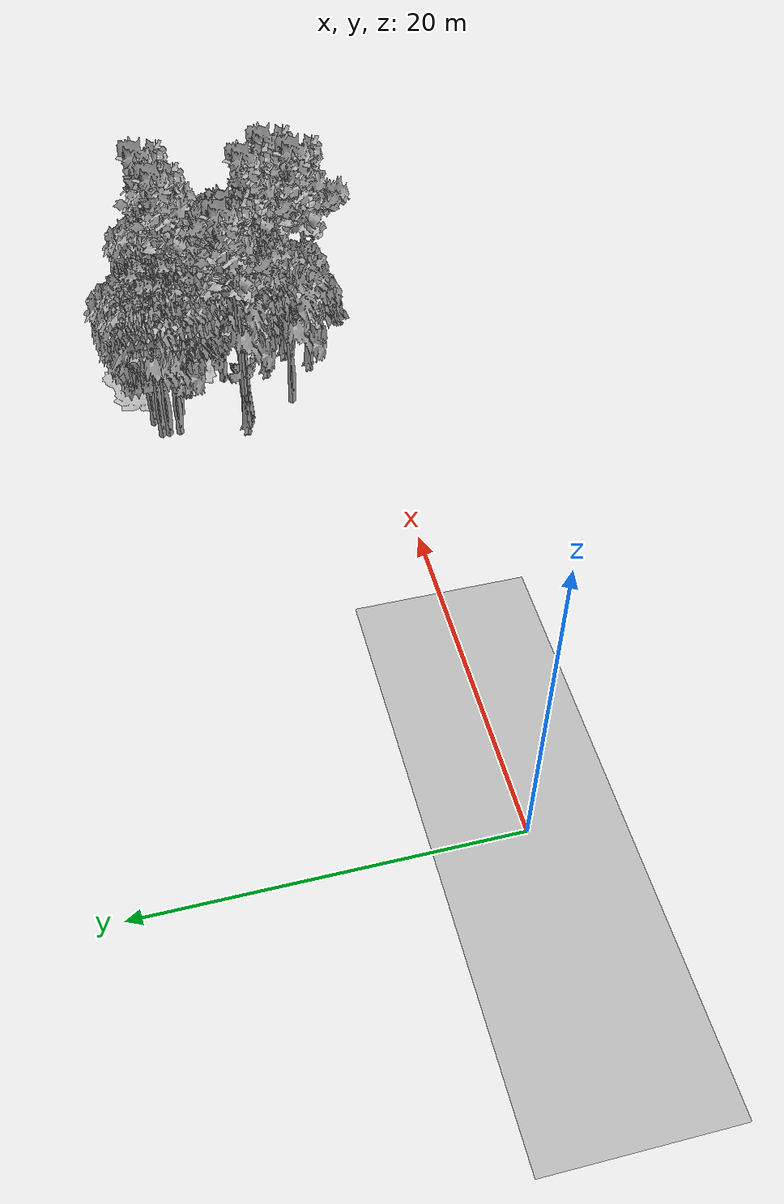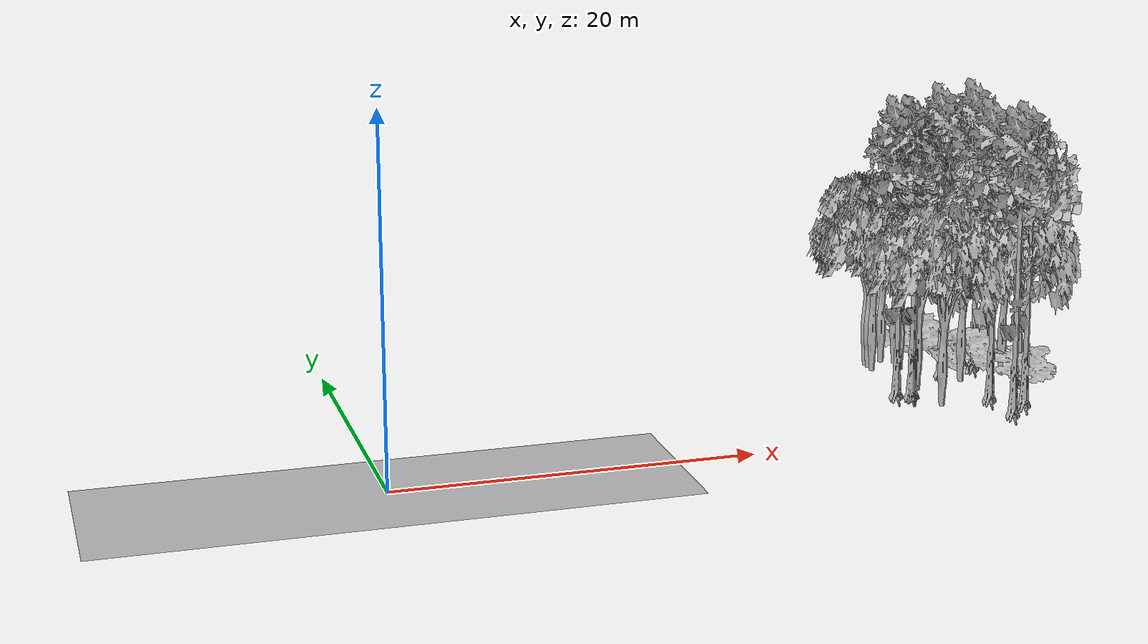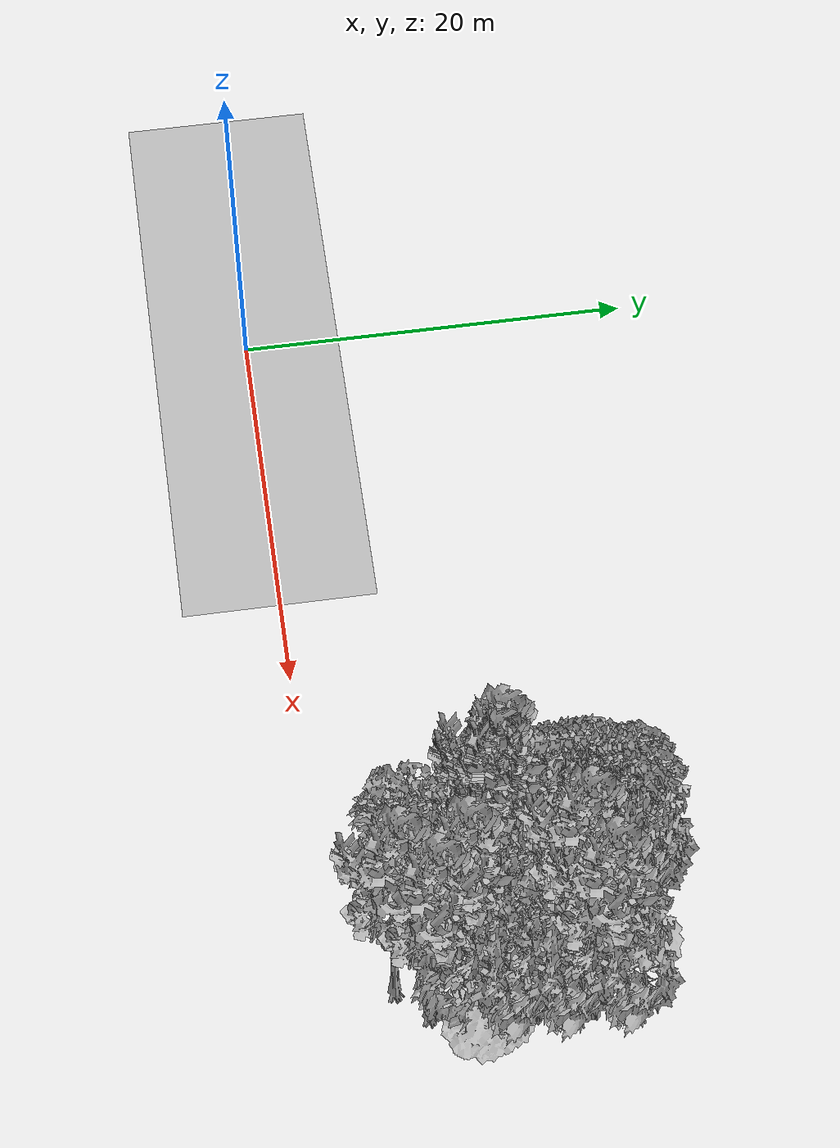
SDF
<sdf version="1.7">
 <world name="default">
  <model name="ground_plane">
   <static>1</static>
   <link name="link">
    <collision name="collision">
     <pose>-50 0 0 0 -0 0</pose>
     <geometry><plane><normal>0 0 1</normal><size>100 100</size></plane></geometry>
     <surface><contact><ode><min_depth>0.01</min_depth><max_vel>0</max_vel></ode></contact></surface>
    </collision>
    <visual name="grass">
     <cast_shadows>0</cast_shadows>
     <geometry>
      <mesh>
       <scale>0.5814285714285714 0.18142857142857144 0.1</scale>
       <uri>file://grass_plane/meshes/grass_plane.dae</uri>
      </mesh>
     </geometry>
    </visual>
   </link>
  </model>
  <model name="Tree 17">
   <static>1</static>
   <pose>38.18825486041709 4.283640740840816 0 1.57079 -0 0</pose>
   <link name="link">
    <collision name="collision">
     <geometry><mesh><scale>3.5 5 3.5</scale><uri>model://tree_9/meshes/tree_9.obj</uri></mesh></geometry>
    </collision>
    <visual name="visual">
     <geometry><mesh><scale>3.5 5 3.5</scale><uri>model://tree_9/meshes/tree_9.obj</uri></mesh></geometry>
    </visual>
   </link>
  </model>
  <model name="Tree 60">
   <static>1</static>
   <pose>31.801380856574454 7.959255208684155 0 1.57079 -0 0</pose>
   <link name="link">
    <collision name="collision">
     <geometry><mesh><scale>3.5 5 3.5</scale><uri>model://tree_9/meshes/tree_9.obj</uri></mesh></geometry>
    </collision>
    <visual name="visual">
     <geometry><mesh><scale>3.5 5 3.5</scale><uri>model://tree_9/meshes/tree_9.obj</uri></mesh></geometry>
    </visual>
   </link>
  </model>
  <model name="Tree 73">
   <static>1</static>
   <pose>33.119487264866464 4.724670429055713 0 1.57079 -0 0</pose>
   <link name="link">
    <collision name="collision">
     <geometry><mesh><scale>3.5 5 3.5</scale><uri>model://tree_2/meshes/tree_2.obj</uri></mesh></geometry>
    </collision>
    <visual name="visual">
     <geometry><mesh><scale>3.5 5 3.5</scale><uri>model://tree_2/meshes/tree_2.obj</uri></mesh></geometry>
    </visual>
   </link>
  </model>
  <model name="Tree 171">
   <static>1</static>
   <pose>36.06194600849989 11.033371287262558 0 1.57079 -0 0</pose>
   <link name="link">
    <collision name="collision">
     <geometry><mesh><scale>3.5 5 3.5</scale><uri>model://tree_9/meshes/tree_9.obj</uri></mesh></geometry>
    </collision>
    <visual name="visual">
     <geometry><mesh><scale>3.5 5 3.5</scale><uri>model://tree_9/meshes/tree_9.obj</uri></mesh></geometry>
    </visual>
   </link>
  </model>
  <model name="Tree 175">
   <static>1</static>
   <pose>36.12898912715005 8.623634537106998 0 1.57079 -0 0</pose>
   <link name="link">
    <collision name="collision">
     <geometry><mesh><scale>3.5 5 3.5</scale><uri>model://tree_2/meshes/tree_2.obj</uri></mesh></geometry>
    </collision>
    <visual name="visual">
     <geometry><mesh><scale>3.5 5 3.5</scale><uri>model://tree_2/meshes/tree_2.obj</uri></mesh></geometry>
    </visual>
   </link>
  </model>
  <model name="Tree 208">
   <static>1</static>
   <pose>39.18103492123957 11.766373894876168 0 1.57079 -0 0</pose>
   <link name="link">
    <collision name="collision">
     <geometry><mesh><scale>3.5 5 3.5</scale><uri>model://tree_2/meshes/tree_2.obj</uri></mesh></geometry>
    </collision>
    <visual name="visual">
     <geometry><mesh><scale>3.5 5 3.5</scale><uri>model://tree_2/meshes/tree_2.obj</uri></mesh></geometry>
    </visual>
   </link>
  </model>
  <model name="Tree 211">
   <static>1</static>
   <pose>33.154415729462315 13.592963001339449 0 1.57079 -0 0</pose>
   <link name="link">
    <collision name="collision">
     <geometry><mesh><scale>3.5 5 3.5</scale><uri>model://tree_2/meshes/tree_2.obj</uri></mesh></geometry>
    </collision>
    <visual name="visual">
     <geometry><mesh><scale>3.5 5 3.5</scale><uri>model://tree_2/meshes/tree_2.obj</uri></mesh></geometry>
    </visual>
   </link>
  </model>
  <model name="Tree 218">
   <static>1</static>
   <pose>31.945807362627818 12.138485751741804 0 1.57079 -0 0</pose>
   <link name="link">
    <collision name="collision">
     <geometry><mesh><scale>3.5 5 3.5</scale><uri>model://tree_2/meshes/tree_2.obj</uri></mesh></geometry>
    </collision>
    <visual name="visual">
     <geometry><mesh><scale>3.5 5 3.5</scale><uri>model://tree_2/meshes/tree_2.obj</uri></mesh></geometry>
    </visual>
   </link>
  </model>
  <model name="Tree 229">
   <static>1</static>
   <pose>36.785758492072816 2.8733846141148014 0 1.57079 -0 0</pose>
   <link name="link">
    <collision name="collision">
     <geometry><mesh><scale>3.5 5 3.5</scale><uri>model://tree_9/meshes/tree_9.obj</uri></mesh></geometry>
    </collision>
    <visual name="visual">
     <geometry><mesh><scale>3.5 5 3.5</scale><uri>model://tree_9/meshes/tree_9.obj</uri></mesh></geometry>
    </visual>
   </link>
  </model>
  <model name="Tree 237">
   <static>1</static>
   <pose>38.46949249728837 11.644810871078455 0 1.57079 -0 0</pose>
   <link name="link">
    <collision name="collision">
     <geometry><mesh><scale>3.5 5 3.5</scale><uri>model://tree_9/meshes/tree_9.obj</uri></mesh></geometry>
    </collision>
    <visual name="visual">
     <geometry><mesh><scale>3.5 5 3.5</scale><uri>model://tree_9/meshes/tree_9.obj</uri></mesh></geometry>
    </visual>
   </link>
  </model>
  <model name="Tree 256">
   <static>1</static>
   <pose>39.19507803085271 6.805998237609828 0 1.57079 -0 0</pose>
   <link name="link">
    <collision name="collision">
     <geometry><mesh><scale>4 2.5 4</scale><uri>model://tree_1/meshes/tree_1.obj</uri></mesh></geometry>
    </collision>
    <visual name="visual">
     <geometry><mesh><scale>4 2.5 4</scale><uri>model://tree_1/meshes/tree_1.obj</uri></mesh></geometry>
    </visual>
   </link>
  </model>
  <model name="Tree 273">
   <static>1</static>
   <pose>31.97731857496109 13.246133905083632 0 1.57079 -0 0</pose>
   <link name="link">
    <collision name="collision">
     <geometry><mesh><scale>3.5 5 3.5</scale><uri>model://tree_2/meshes/tree_2.obj</uri></mesh></geometry>
    </collision>
    <visual name="visual">
     <geometry><mesh><scale>3.5 5 3.5</scale><uri>model://tree_2/meshes/tree_2.obj</uri></mesh></geometry>
    </visual>
   </link>
  </model>
  <model name="Tree 314">
   <static>1</static>
   <pose>33.835152556276796 13.15519883858246 0 1.57079 -0 0</pose>
   <link name="link">
    <collision name="collision">
     <geometry><mesh><scale>3.5 5 3.5</scale><uri>model://tree_2/meshes/tree_2.obj</uri></mesh></geometry>
    </collision>
    <visual name="visual">
     <geometry><mesh><scale>3.5 5 3.5</scale><uri>model://tree_2/meshes/tree_2.obj</uri></mesh></geometry>
    </visual>
   </link>
  </model>
  <model name="Tree 370">
   <static>1</static>
   <pose>39.030614843236805 9.095409324979432 0 1.57079 -0 0</pose>
   <link name="link">
    <collision name="collision">
     <geometry><mesh><scale>3.5 5 3.5</scale><uri>model://tree_2/meshes/tree_2.obj</uri></mesh></geometry>
    </collision>
    <visual name="visual">
     <geometry><mesh><scale>3.5 5 3.5</scale><uri>model://tree_2/meshes/tree_2.obj</uri></mesh></geometry>
    </visual>
   </link>
  </model>
  <model name="Tree 377">
   <static>1</static>
   <pose>32.593397454564254 7.646848822701919 0 1.57079 -0 0</pose>
   <link name="link">
    <collision name="collision">
     <geometry><mesh><scale>3.5 5 3.5</scale><uri>model://tree_9/meshes/tree_9.obj</uri></mesh></geometry>
    </collision>
    <visual name="visual">
     <geometry><mesh><scale>3.5 5 3.5</scale><uri>model://tree_9/meshes/tree_9.obj</uri></mesh></geometry>
    </visual>
   </link>
  </model>
  <model name="Tree 412">
   <static>1</static>
   <pose>37.40348013238504 10.106104605405438 0 1.57079 -0 0</pose>
   <link name="link">
    <collision name="collision">
     <geometry><mesh><scale>3 2 3</scale><uri>model://tree_3/meshes/tree_3.obj</uri></mesh></geometry>
    </collision>
    <visual name="visual">
     <geometry><mesh><scale>3 2 3</scale><uri>model://tree_3/meshes/tree_3.obj</uri></mesh></geometry>
    </visual>
   </link>
  </model>
  <model name="Tree 414">
   <static>1</static>
   <pose>35.76300284078202 14.212173703705584 0 1.57079 -0 0</pose>
   <link name="link">
    <collision name="collision">
     <geometry><mesh><scale>3 2 3</scale><uri>model://tree_3/meshes/tree_3.obj</uri></mesh></geometry>
    </collision>
    <visual name="visual">
     <geometry><mesh><scale>3 2 3</scale><uri>model://tree_3/meshes/tree_3.obj</uri></mesh></geometry>
    </visual>
   </link>
  </model>
  <model name="Tree 424">
   <static>1</static>
   <pose>33.62135431678544 11.809628612875574 0 1.57079 -0 0</pose>
   <link name="link">
    <collision name="collision">
     <geometry><mesh><scale>3.5 5 3.5</scale><uri>model://tree_2/meshes/tree_2.obj</uri></mesh></geometry>
    </collision>
    <visual name="visual">
     <geometry><mesh><scale>3.5 5 3.5</scale><uri>model://tree_2/meshes/tree_2.obj</uri></mesh></geometry>
    </visual>
   </link>
  </model>
  <model name="Tree 429">
   <static>1</static>
   <pose>32.67648194886753 7.627360988375575 0 1.57079 -0 0</pose>
   <link name="link">
    <collision name="collision">
     <geometry><mesh><scale>3.5 5 3.5</scale><uri>model://tree_9/meshes/tree_9.obj</uri></mesh></geometry>
    </collision>
    <visual name="visual">
     <geometry><mesh><scale>3.5 5 3.5</scale><uri>model://tree_9/meshes/tree_9.obj</uri></mesh></geometry>
    </visual>
   </link>
  </model>
  <model name="Tree 432">
   <static>1</static>
   <pose>31.982542280994494 12.804969783197638 0 1.57079 -0 0</pose>
   <link name="link">
    <collision name="collision">
     <geometry><mesh><scale>3.5 5 3.5</scale><uri>model://tree_2/meshes/tree_2.obj</uri></mesh></geometry>
    </collision>
    <visual name="visual">
     <geometry><mesh><scale>3.5 5 3.5</scale><uri>model://tree_2/meshes/tree_2.obj</uri></mesh></geometry>
    </visual>
   </link>
  </model>
  <model name="Tree 448">
   <static>1</static>
   <pose>38.866023911609844 6.717199795158987 0 1.57079 -0 0</pose>
   <link name="link">
    <collision name="collision">
     <geometry><mesh><scale>3.5 5 3.5</scale><uri>model://tree_2/meshes/tree_2.obj</uri></mesh></geometry>
    </collision>
    <visual name="visual">
     <geometry><mesh><scale>3.5 5 3.5</scale><uri>model://tree_2/meshes/tree_2.obj</uri></mesh></geometry>
    </visual>
   </link>
  </model>
  <model name="Tree 454">
   <static>1</static>
   <pose>32.96332682134326 7.811225490062377 0 1.57079 -0 0</pose>
   <link name="link">
    <collision name="collision">
     <geometry><mesh><scale>3.5 5 3.5</scale><uri>model://tree_2/meshes/tree_2.obj</uri></mesh></geometry>
    </collision>
    <visual name="visual">
     <geometry><mesh><scale>3.5 5 3.5</scale><uri>model://tree_2/meshes/tree_2.obj</uri></mesh></geometry>
    </visual>
   </link>
  </model>
  <model name="Tree 481">
   <static>1</static>
   <pose>36.7298097689218 5.773540491760183 0 1.57079 -0 0</pose>
   <link name="link">
    <collision name="collision">
     <geometry><mesh><scale>3.5 5 3.5</scale><uri>model://tree_9/meshes/tree_9.obj</uri></mesh></geometry>
    </collision>
    <visual name="visual">
     <geometry><mesh><scale>3.5 5 3.5</scale><uri>model://tree_9/meshes/tree_9.obj</uri></mesh></geometry>
    </visual>
   </link>
  </model>
 </world>
</sdf>
